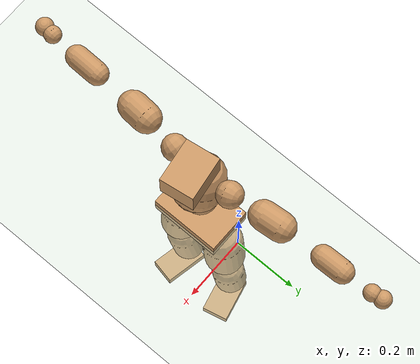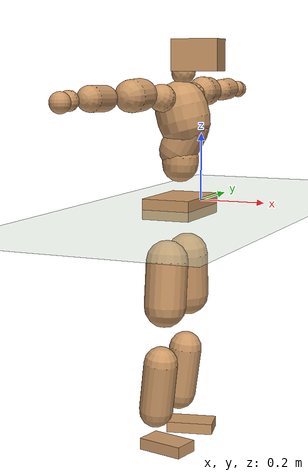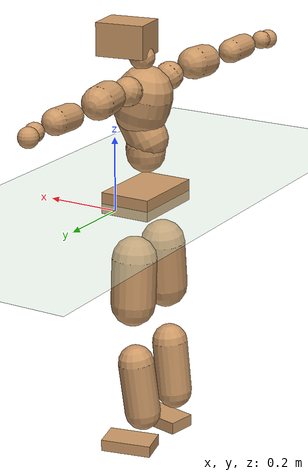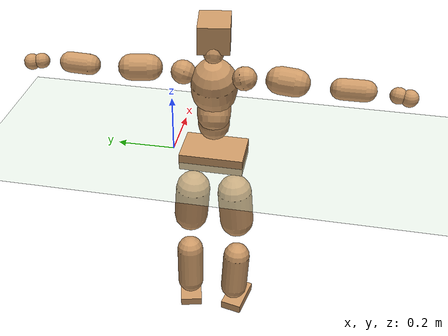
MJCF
<mujoco model="humanoid">
  <compiler coordinate="local" angle="radian"/>
  <default>
    <joint damping="0.0" armature="0.01" stiffness="0.0" limited="true"/>
    <geom conaffinity="1" condim="3" contype="7" margin="0.001" rgba="0.8 0.6 .4 1"/>
  </default>
  <asset>
    <texture type="skybox" builtin="gradient" rgb1=".4 .5 .6" rgb2="0 0 0" width="100" height="100"/>
    <texture builtin="flat" height="1278" mark="cross" markrgb="1 1 1" name="texgeom" random="0.01" rgb1="0.8 0.6 0.4" rgb2="0.8 0.6 0.4" type="cube" width="127"/>
    <texture builtin="checker" height="100" name="texplane" rgb1="0 0 0" rgb2="0.8 0.8 0.8" type="2d" width="100"/>
    <material name="MatPlane" reflectance="0.5" shininess="1" specular="1" texrepeat="60 60" texture="texplane"/>
    <material name="geom" texture="texgeom" texuniform="true"/>
  </asset>
  <worldbody>
    <light cutoff="100" diffuse="1 1 1" dir="-0 0 -1.3" directional="true" exponent="1" pos="0 0 1.3" specular=".1 .1 .1"/>
    <geom conaffinity="1" condim="3" name="floor" pos="0 0 0" rgba="0.8 0.9 0.8 1" size="100 100 .2" type="plane" material="MatPlane"/>
    <body name="Pelvis" pos="-0 -0.1442 0.011">
      <freejoint name="Pelvis"/>
      <geom type="box" contype="1" conaffinity="1" density="5359.37541" pos="-0.0057 0.0000 -0.0110" size="0.071 0.1092 0.0292" quat="1.0000 0.0000 0.0000 -0.0012" name="Pelvis"/>
      <body name="L_Hip" pos="-0.0144 0.0683 -0.0734">
        <joint name="L_Hip_x" type="hinge" pos="0 0 0" axis="1 0 0" stiffness="1600" damping="160" armature="0.02" range="-180.0000 180.0000"/>
        <joint name="L_Hip_y" type="hinge" pos="0 0 0" axis="0 1 0" stiffness="1600" damping="160" armature="0.02" range="-180.0000 180.0000"/>
        <joint name="L_Hip_z" type="hinge" pos="0 0 0" axis="0 0 1" stiffness="1600" damping="160" armature="0.02" range="-180.0000 180.0000"/>
        <geom type="capsule" contype="1" conaffinity="1" density="2040.816327" size="0.0612" fromto="-0.0007 0.0069 -0.0909 -0.0017 0.0164 -0.2170" name="L_Hip"/>
        <body name="L_Knee" pos="-0.0024 0.0233 -0.3079">
          <joint name="L_Knee_x" type="hinge" pos="0 0 0" axis="1 0 0" stiffness="1600" damping="160" armature="0.02" range="-180.0000 180.0000"/>
          <joint name="L_Knee_y" type="hinge" pos="0 0 0" axis="0 1 0" stiffness="1600" damping="160" armature="0.02" range="-180.0000 180.0000"/>
          <joint name="L_Knee_z" type="hinge" pos="0 0 0" axis="0 0 1" stiffness="1600" damping="160" armature="0.02" range="-180.0000 180.0000"/>
          <geom type="capsule" contype="1" conaffinity="1" density="1234.567901" size="0.0496" fromto="-0.0101 -0.0020 -0.0790 -0.0288 -0.0058 -0.2242" name="L_Knee"/>
          <body name="L_Ankle" pos="-0.039 -0.0078 -0.3031">
            <joint name="L_Ankle_x" type="hinge" pos="0 0 0" axis="1 0 0" stiffness="1600" damping="160" armature="0.02" range="-180.0000 180.0000"/>
            <joint name="L_Ankle_y" type="hinge" pos="0 0 0" axis="0 1 0" stiffness="1600" damping="160" armature="0.02" range="-180.0000 180.0000"/>
            <joint name="L_Ankle_z" type="hinge" pos="0 0 0" axis="0 0 1" stiffness="1600" damping="160" armature="0.02" range="-180.0000 180.0000"/>
            <geom type="box" contype="1" conaffinity="1" density="999.999991" pos="0.0469 0.0108 -0.0209" size="0.0701 0.0409 0.0161" quat="0.9936 0.0000 0.0000 0.1132" name="L_Ankle"/>
            <body name="L_Toe" pos="0.0939 0.0217 -0.0418">
              <joint name="L_Toe_x" type="hinge" pos="0 0 0" axis="1 0 0" stiffness="1000" damping="100" armature="0.02" range="-180.0000 180.0000"/>
              <joint name="L_Toe_y" type="hinge" pos="0 0 0" axis="0 1 0" stiffness="1000" damping="100" armature="0.02" range="-180.0000 180.0000"/>
              <joint name="L_Toe_z" type="hinge" pos="0 0 0" axis="0 0 1" stiffness="1000" damping="100" armature="0.02" range="-180.0000 180.0000"/>
              <geom type="box" contype="1" conaffinity="1" density="7882134.139642" pos="0.0000 0.0000 0.0208" size="0.0008 0.002 0.0008" quat="0.9927 0.0000 0.0000 0.1207" name="L_Toe"/>
            </body>
          </body>
        </body>
      </body>
      <body name="R_Hip" pos="-0.0122 -0.0686 -0.0715">
        <joint name="R_Hip_x" type="hinge" pos="0 0 0" axis="1 0 0" stiffness="1600" damping="160" armature="0.02" range="-180.0000 180.0000"/>
        <joint name="R_Hip_y" type="hinge" pos="0 0 0" axis="0 1 0" stiffness="1600" damping="160" armature="0.02" range="-180.0000 180.0000"/>
        <joint name="R_Hip_z" type="hinge" pos="0 0 0" axis="0 0 1" stiffness="1600" damping="160" armature="0.02" range="-180.0000 180.0000"/>
        <geom type="capsule" contype="1" conaffinity="1" density="2040.816327" size="0.0609" fromto="-0.0015 -0.0074 -0.0905 -0.0038 -0.0182 -0.2220" name="R_Hip"/>
        <body name="R_Knee" pos="-0.0053 -0.0257 -0.3126">
          <joint name="R_Knee_x" type="hinge" pos="0 0 0" axis="1 0 0" stiffness="1600" damping="160" armature="0.02" range="-180.0000 180.0000"/>
          <joint name="R_Knee_y" type="hinge" pos="0 0 0" axis="0 1 0" stiffness="1600" damping="160" armature="0.02" range="-180.0000 180.0000"/>
          <joint name="R_Knee_z" type="hinge" pos="0 0 0" axis="0 0 1" stiffness="1600" damping="160" armature="0.02" range="-180.0000 180.0000"/>
          <geom type="capsule" contype="1" conaffinity="1" density="1234.567901" size="0.0499" fromto="-0.0098 0.0027 -0.0792 -0.0279 0.0078 -0.2251" name="R_Knee"/>
          <body name="R_Ankle" pos="-0.0377 0.0106 -0.3044">
            <joint name="R_Ankle_x" type="hinge" pos="0 0 0" axis="1 0 0" stiffness="1600" damping="160" armature="0.02" range="-180.0000 180.0000"/>
            <joint name="R_Ankle_y" type="hinge" pos="0 0 0" axis="0 1 0" stiffness="1600" damping="160" armature="0.02" range="-180.0000 180.0000"/>
            <joint name="R_Ankle_z" type="hinge" pos="0 0 0" axis="0 0 1" stiffness="1600" damping="160" armature="0.02" range="-180.0000 180.0000"/>
            <geom type="box" contype="1" conaffinity="1" density="1000.000083" pos="0.0483 -0.0100 -0.0188" size="0.0692 0.0393 0.017" quat="0.9948 0.0000 0.0000 -0.1023" name="R_Ankle"/>
            <body name="R_Toe" pos="0.0966 -0.0201 -0.0376">
              <joint name="R_Toe_x" type="hinge" pos="0 0 0" axis="1 0 0" stiffness="1000" damping="100" armature="0.02" range="-180.0000 180.0000"/>
              <joint name="R_Toe_y" type="hinge" pos="0 0 0" axis="0 1 0" stiffness="1000" damping="100" armature="0.02" range="-180.0000 180.0000"/>
              <joint name="R_Toe_z" type="hinge" pos="0 0 0" axis="0 0 1" stiffness="1000" damping="100" armature="0.02" range="-180.0000 180.0000"/>
              <geom type="box" contype="1" conaffinity="1" density="7938342.095415" pos="0.0000 0.0000 0.0188" size="0.0008 0.002 0.0008" quat="0.9959 0.0000 0.0000 -0.0906" name="R_Toe"/>
            </body>
          </body>
        </body>
      </body>
      <body name="Torso" pos="-0.0078 0.0004 0.0791">
        <joint name="Torso_x" type="hinge" pos="0 0 0" axis="1 0 0" stiffness="2000" damping="200" armature="0.02" range="-180.0000 180.0000"/>
        <joint name="Torso_y" type="hinge" pos="0 0 0" axis="0 1 0" stiffness="2000" damping="200" armature="0.02" range="-180.0000 180.0000"/>
        <joint name="Torso_z" type="hinge" pos="0 0 0" axis="0 0 1" stiffness="2000" damping="200" armature="0.02" range="-180.0000 180.0000"/>
        <geom type="capsule" contype="1" conaffinity="1" density="2040.816327" size="0.053" fromto="0.0021 0.0001 0.0530 0.0013 0.0000 0.0325" name="Torso"/>
        <body name="Spine" pos="0.0034 0.0001 0.0854">
          <joint name="Spine_x" type="hinge" pos="0 0 0" axis="1 0 0" stiffness="2000" damping="200" armature="0.02" range="-180.0000 180.0000"/>
          <joint name="Spine_y" type="hinge" pos="0 0 0" axis="0 1 0" stiffness="2000" damping="200" armature="0.02" range="-180.0000 180.0000"/>
          <joint name="Spine_z" type="hinge" pos="0 0 0" axis="0 0 1" stiffness="2000" damping="200" armature="0.02" range="-180.0000 180.0000"/>
          <geom type="capsule" contype="1" conaffinity="1" density="2040.816327" size="0.0558" fromto="0.0268 0.0028 0.0489 -0.0076 -0.0008 -0.0138" name="Spine"/>
          <body name="Chest" pos="0.0192 0.002 0.035">
            <joint name="Chest_x" type="hinge" pos="0 0 0" axis="1 0 0" stiffness="2000" damping="200" armature="0.02" range="-180.0000 180.0000"/>
            <joint name="Chest_y" type="hinge" pos="0 0 0" axis="0 1 0" stiffness="2000" damping="200" armature="0.02" range="-180.0000 180.0000"/>
            <joint name="Chest_z" type="hinge" pos="0 0 0" axis="0 0 1" stiffness="2000" damping="200" armature="0.02" range="-180.0000 180.0000"/>
            <geom type="capsule" contype="1" conaffinity="1" density="2040.816327" size="0.0759" fromto="-0.0193 -0.0009 0.0734 -0.0091 -0.0004 0.0345" name="Chest"/>
            <body name="Neck" pos="-0.0333 -0.0009 0.1483">
              <joint name="Neck_x" type="hinge" pos="0 0 0" axis="1 0 0" stiffness="1000" damping="100" armature="0.02" range="-180.0000 180.0000"/>
              <joint name="Neck_y" type="hinge" pos="0 0 0" axis="0 1 0" stiffness="1000" damping="100" armature="0.02" range="-180.0000 180.0000"/>
              <joint name="Neck_z" type="hinge" pos="0 0 0" axis="0 0 1" stiffness="1000" damping="100" armature="0.02" range="-180.0000 180.0000"/>
              <geom type="capsule" contype="1" conaffinity="1" density="1000" size="0.0334" fromto="0.0221 0.0023 0.0250 0.0195 0.0020 0.0221" name="Neck"/>
              <body name="Head" pos="0.0416 0.0043 0.0471">
                <joint name="Head_x" type="hinge" pos="0 0 0" axis="1 0 0" stiffness="1000" damping="100" armature="0.02" range="-180.0000 180.0000"/>
                <joint name="Head_y" type="hinge" pos="0 0 0" axis="0 1 0" stiffness="1000" damping="100" armature="0.02" range="-180.0000 180.0000"/>
                <joint name="Head_z" type="hinge" pos="0 0 0" axis="0 0 1" stiffness="1000" damping="100" armature="0.02" range="-180.0000 180.0000"/>
                <geom type="box" contype="1" conaffinity="1" density="2250.000215" pos="0.0218 0.0032 0.0245" size="0.0664 0.0517 0.0448" quat="0.9974 0.0000 0.0000 0.0718" name="Head"/>
              </body>
            </body>
            <body name="L_Thorax" pos="-0.0236 0.0613 0.0881">
              <joint name="L_Thorax_x" type="hinge" pos="0 0 0" axis="1 0 0" stiffness="1000" damping="100" armature="0.02" range="-180.0000 180.0000"/>
              <joint name="L_Thorax_y" type="hinge" pos="0 0 0" axis="0 1 0" stiffness="1000" damping="100" armature="0.02" range="-180.0000 180.0000"/>
              <joint name="L_Thorax_z" type="hinge" pos="0 0 0" axis="0 0 1" stiffness="1000" damping="100" armature="0.02" range="-180.0000 180.0000"/>
              <geom type="capsule" contype="1" conaffinity="1" density="1000" size="0.0393" fromto="-0.0035 0.0349 0.0135 -0.0037 0.0367 0.0142" name="L_Thorax"/>
              <body name="L_Shoulder" pos="-0.0072 0.0716 0.0277">
                <joint name="L_Shoulder_x" type="hinge" pos="0 0 0" axis="1 0 0" stiffness="1000" damping="100" armature="0.02" range="-720.0000 720.0000"/>
                <joint name="L_Shoulder_y" type="hinge" pos="0 0 0" axis="0 1 0" stiffness="1000" damping="100" armature="0.02" range="-720.0000 720.0000"/>
                <joint name="L_Shoulder_z" type="hinge" pos="0 0 0" axis="0 0 1" stiffness="1000" damping="100" armature="0.02" range="-720.0000 720.0000"/>
                <geom type="capsule" contype="1" conaffinity="1" density="1000" size="0.0431" fromto="-0.0074 0.0727 -0.0024 -0.0132 0.1296 -0.0043" name="L_Shoulder"/>
                <body name="L_Elbow" pos="-0.0205 0.2023 -0.0067">
                  <joint name="L_Elbow_x" type="hinge" pos="0 0 0" axis="1 0 0" stiffness="1000" damping="100" armature="0.02" range="-720.0000 720.0000"/>
                  <joint name="L_Elbow_y" type="hinge" pos="0 0 0" axis="0 1 0" stiffness="1000" damping="100" armature="0.02" range="-720.0000 720.0000"/>
                  <joint name="L_Elbow_z" type="hinge" pos="0 0 0" axis="0 0 1" stiffness="1000" damping="100" armature="0.02" range="-720.0000 720.0000"/>
                  <geom type="capsule" contype="1" conaffinity="1" density="1000" size="0.0335" fromto="-0.0007 0.0635 0.0024 -0.0014 0.1298 0.0050" name="L_Elbow"/>
                  <body name="L_Wrist" pos="-0.0021 0.1933 0.0074">
                    <joint name="L_Wrist_x" type="hinge" pos="0 0 0" axis="1 0 0" stiffness="600" damping="60" armature="0.02" range="-180.0000 180.0000"/>
                    <joint name="L_Wrist_y" type="hinge" pos="0 0 0" axis="0 1 0" stiffness="600" damping="60" armature="0.02" range="-180.0000 180.0000"/>
                    <joint name="L_Wrist_z" type="hinge" pos="0 0 0" axis="0 0 1" stiffness="600" damping="60" armature="0.02" range="-180.0000 180.0000"/>
                    <geom type="capsule" contype="1" conaffinity="1" density="1000" size="0.0245" fromto="-0.0052 0.0310 -0.0038 -0.0055 0.0330 -0.0041" name="L_Wrist"/>
                    <body name="L_Hand" pos="-0.0107 0.064 -0.0079">
                      <joint name="L_Hand_x" type="hinge" pos="0 0 0" axis="1 0 0" stiffness="600" damping="60" armature="0.02" range="-180.0000 180.0000"/>
                      <joint name="L_Hand_y" type="hinge" pos="0 0 0" axis="0 1 0" stiffness="600" damping="60" armature="0.02" range="-180.0000 180.0000"/>
                      <joint name="L_Hand_z" type="hinge" pos="0 0 0" axis="0 0 1" stiffness="600" damping="60" armature="0.02" range="-180.0000 180.0000"/>
                      <geom type="sphere" contype="1" conaffinity="1" density="1000" size="0.0259" pos="0.0000 0.0000 0.0000" name="L_Hand"/>
                    </body>
                  </body>
                </body>
              </body>
            </body>
            <body name="R_Thorax" pos="-0.0282 -0.0642 0.0872">
              <joint name="R_Thorax_x" type="hinge" pos="0 0 0" axis="1 0 0" stiffness="1000" damping="100" armature="0.02" range="-180.0000 180.0000"/>
              <joint name="R_Thorax_y" type="hinge" pos="0 0 0" axis="0 1 0" stiffness="1000" damping="100" armature="0.02" range="-180.0000 180.0000"/>
              <joint name="R_Thorax_z" type="hinge" pos="0 0 0" axis="0 0 1" stiffness="1000" damping="100" armature="0.02" range="-180.0000 180.0000"/>
              <geom type="capsule" contype="1" conaffinity="1" density="1000" size="0.0387" fromto="-0.0052 -0.0371 0.0146 -0.0055 -0.0389 0.0153" name="R_Thorax"/>
              <body name="R_Shoulder" pos="-0.0107 -0.076 0.03">
                <joint name="R_Shoulder_x" type="hinge" pos="0 0 0" axis="1 0 0" stiffness="1000" damping="100" armature="0.02" range="-720.0000 720.0000"/>
                <joint name="R_Shoulder_y" type="hinge" pos="0 0 0" axis="0 1 0" stiffness="1000" damping="100" armature="0.02" range="-720.0000 720.0000"/>
                <joint name="R_Shoulder_z" type="hinge" pos="0 0 0" axis="0 0 1" stiffness="1000" damping="100" armature="0.02" range="-720.0000 720.0000"/>
                <geom type="capsule" contype="1" conaffinity="1" density="1000" size="0.0441" fromto="-0.0059 -0.0738 -0.0030 -0.0100 -0.1255 -0.0051" name="R_Shoulder"/>
                <body name="R_Elbow" pos="-0.0159 -0.1993 -0.008">
                  <joint name="R_Elbow_x" type="hinge" pos="0 0 0" axis="1 0 0" stiffness="1000" damping="100" armature="0.02" range="-720.0000 720.0000"/>
                  <joint name="R_Elbow_y" type="hinge" pos="0 0 0" axis="0 1 0" stiffness="1000" damping="100" armature="0.02" range="-720.0000 720.0000"/>
                  <joint name="R_Elbow_z" type="hinge" pos="0 0 0" axis="0 0 1" stiffness="1000" damping="100" armature="0.02" range="-720.0000 720.0000"/>
                  <geom type="capsule" contype="1" conaffinity="1" density="1000" size="0.0337" fromto="-0.0015 -0.0637 0.0014 -0.0032 -0.1384 0.0030" name="R_Elbow"/>
                  <body name="R_Wrist" pos="-0.0047 -0.2021 0.0043">
                    <joint name="R_Wrist_x" type="hinge" pos="0 0 0" axis="1 0 0" stiffness="600" damping="60" armature="0.02" range="-180.0000 180.0000"/>
                    <joint name="R_Wrist_y" type="hinge" pos="0 0 0" axis="0 1 0" stiffness="600" damping="60" armature="0.02" range="-180.0000 180.0000"/>
                    <joint name="R_Wrist_z" type="hinge" pos="0 0 0" axis="0 0 1" stiffness="600" damping="60" armature="0.02" range="-180.0000 180.0000"/>
                    <geom type="capsule" contype="1" conaffinity="1" density="1000" size="0.0258" fromto="-0.0043 -0.0320 -0.0031 -0.0045 -0.0340 -0.0033" name="R_Wrist"/>
                    <body name="R_Hand" pos="-0.0088 -0.066 -0.0063">
                      <joint name="R_Hand_x" type="hinge" pos="0 0 0" axis="1 0 0" stiffness="600" damping="60" armature="0.02" range="-180.0000 180.0000"/>
                      <joint name="R_Hand_y" type="hinge" pos="0 0 0" axis="0 1 0" stiffness="600" damping="60" armature="0.02" range="-180.0000 180.0000"/>
                      <joint name="R_Hand_z" type="hinge" pos="0 0 0" axis="0 0 1" stiffness="600" damping="60" armature="0.02" range="-180.0000 180.0000"/>
                      <geom type="sphere" contype="1" conaffinity="1" density="1000" size="0.0268" pos="0.0000 0.0000 0.0000" name="R_Hand"/>
                    </body>
                  </body>
                </body>
              </body>
            </body>
          </body>
        </body>
      </body>
    </body>
  </worldbody>
  <actuator>
    <motor name="L_Hip_x" joint="L_Hip_x" gear="500"/>
    <motor name="L_Hip_y" joint="L_Hip_y" gear="500"/>
    <motor name="L_Hip_z" joint="L_Hip_z" gear="500"/>
    <motor name="L_Knee_x" joint="L_Knee_x" gear="500"/>
    <motor name="L_Knee_y" joint="L_Knee_y" gear="500"/>
    <motor name="L_Knee_z" joint="L_Knee_z" gear="500"/>
    <motor name="L_Ankle_x" joint="L_Ankle_x" gear="500"/>
    <motor name="L_Ankle_y" joint="L_Ankle_y" gear="500"/>
    <motor name="L_Ankle_z" joint="L_Ankle_z" gear="500"/>
    <motor name="L_Toe_x" joint="L_Toe_x" gear="500"/>
    <motor name="L_Toe_y" joint="L_Toe_y" gear="500"/>
    <motor name="L_Toe_z" joint="L_Toe_z" gear="500"/>
    <motor name="R_Hip_x" joint="R_Hip_x" gear="500"/>
    <motor name="R_Hip_y" joint="R_Hip_y" gear="500"/>
    <motor name="R_Hip_z" joint="R_Hip_z" gear="500"/>
    <motor name="R_Knee_x" joint="R_Knee_x" gear="500"/>
    <motor name="R_Knee_y" joint="R_Knee_y" gear="500"/>
    <motor name="R_Knee_z" joint="R_Knee_z" gear="500"/>
    <motor name="R_Ankle_x" joint="R_Ankle_x" gear="500"/>
    <motor name="R_Ankle_y" joint="R_Ankle_y" gear="500"/>
    <motor name="R_Ankle_z" joint="R_Ankle_z" gear="500"/>
    <motor name="R_Toe_x" joint="R_Toe_x" gear="500"/>
    <motor name="R_Toe_y" joint="R_Toe_y" gear="500"/>
    <motor name="R_Toe_z" joint="R_Toe_z" gear="500"/>
    <motor name="Torso_x" joint="Torso_x" gear="500"/>
    <motor name="Torso_y" joint="Torso_y" gear="500"/>
    <motor name="Torso_z" joint="Torso_z" gear="500"/>
    <motor name="Spine_x" joint="Spine_x" gear="500"/>
    <motor name="Spine_y" joint="Spine_y" gear="500"/>
    <motor name="Spine_z" joint="Spine_z" gear="500"/>
    <motor name="Chest_x" joint="Chest_x" gear="500"/>
    <motor name="Chest_y" joint="Chest_y" gear="500"/>
    <motor name="Chest_z" joint="Chest_z" gear="500"/>
    <motor name="Neck_x" joint="Neck_x" gear="500"/>
    <motor name="Neck_y" joint="Neck_y" gear="500"/>
    <motor name="Neck_z" joint="Neck_z" gear="500"/>
    <motor name="Head_x" joint="Head_x" gear="500"/>
    <motor name="Head_y" joint="Head_y" gear="500"/>
    <motor name="Head_z" joint="Head_z" gear="500"/>
    <motor name="L_Thorax_x" joint="L_Thorax_x" gear="500"/>
    <motor name="L_Thorax_y" joint="L_Thorax_y" gear="500"/>
    <motor name="L_Thorax_z" joint="L_Thorax_z" gear="500"/>
    <motor name="L_Shoulder_x" joint="L_Shoulder_x" gear="500"/>
    <motor name="L_Shoulder_y" joint="L_Shoulder_y" gear="500"/>
    <motor name="L_Shoulder_z" joint="L_Shoulder_z" gear="500"/>
    <motor name="L_Elbow_x" joint="L_Elbow_x" gear="500"/>
    <motor name="L_Elbow_y" joint="L_Elbow_y" gear="500"/>
    <motor name="L_Elbow_z" joint="L_Elbow_z" gear="500"/>
    <motor name="L_Wrist_x" joint="L_Wrist_x" gear="500"/>
    <motor name="L_Wrist_y" joint="L_Wrist_y" gear="500"/>
    <motor name="L_Wrist_z" joint="L_Wrist_z" gear="500"/>
    <motor name="L_Hand_x" joint="L_Hand_x" gear="500"/>
    <motor name="L_Hand_y" joint="L_Hand_y" gear="500"/>
    <motor name="L_Hand_z" joint="L_Hand_z" gear="500"/>
    <motor name="R_Thorax_x" joint="R_Thorax_x" gear="500"/>
    <motor name="R_Thorax_y" joint="R_Thorax_y" gear="500"/>
    <motor name="R_Thorax_z" joint="R_Thorax_z" gear="500"/>
    <motor name="R_Shoulder_x" joint="R_Shoulder_x" gear="500"/>
    <motor name="R_Shoulder_y" joint="R_Shoulder_y" gear="500"/>
    <motor name="R_Shoulder_z" joint="R_Shoulder_z" gear="500"/>
    <motor name="R_Elbow_x" joint="R_Elbow_x" gear="500"/>
    <motor name="R_Elbow_y" joint="R_Elbow_y" gear="500"/>
    <motor name="R_Elbow_z" joint="R_Elbow_z" gear="500"/>
    <motor name="R_Wrist_x" joint="R_Wrist_x" gear="500"/>
    <motor name="R_Wrist_y" joint="R_Wrist_y" gear="500"/>
    <motor name="R_Wrist_z" joint="R_Wrist_z" gear="500"/>
    <motor name="R_Hand_x" joint="R_Hand_x" gear="500"/>
    <motor name="R_Hand_y" joint="R_Hand_y" gear="500"/>
    <motor name="R_Hand_z" joint="R_Hand_z" gear="500"/>
  </actuator>
  <contact>
    <exclude body1="Torso" body2="Chest"/>
    <exclude body1="Head" body2="Chest"/>
    <exclude body1="R_Knee" body2="R_Toe"/>
    <exclude body1="R_Knee" body2="L_Ankle"/>
    <exclude body1="R_Knee" body2="L_Toe"/>
    <exclude body1="L_Knee" body2="L_Toe"/>
    <exclude body1="L_Knee" body2="R_Ankle"/>
    <exclude body1="L_Knee" body2="R_Toe"/>
    <exclude body1="L_Shoulder" body2="Chest"/>
    <exclude body1="R_Shoulder" body2="Chest"/>
  </contact>
  <sensor/>
  <size njmax="700" nconmax="700"/>
</mujoco>
